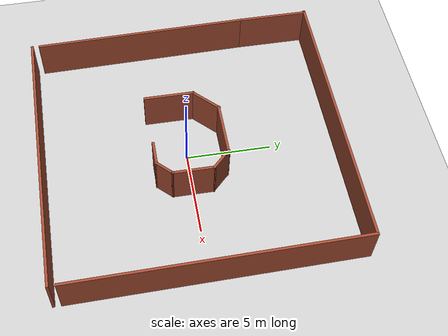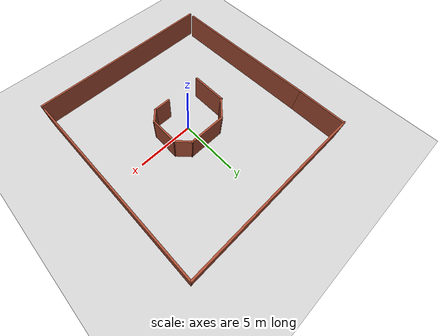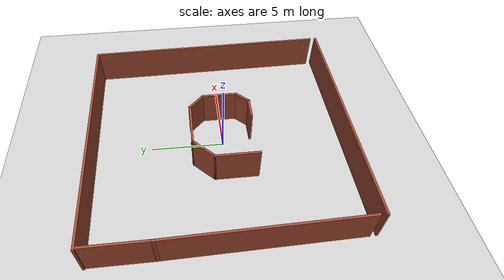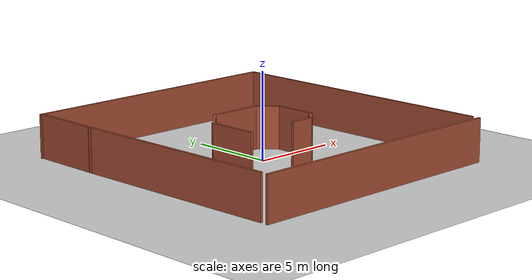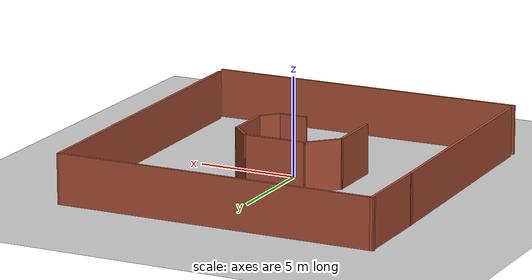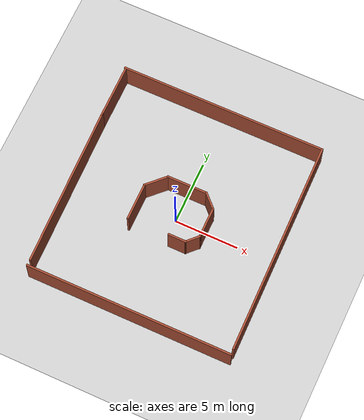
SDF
<sdf version="1.6">
 <world name="default">
  <light name="sun" type="directional">
   <pose>0 0 10 0 -0 0</pose>
   <diffuse>0.8 0.8 0.8 1</diffuse>
   <specular>0.2 0.2 0.2 1</specular>
   <attenuation>
    <range>1000</range>
    <constant>0.9</constant>
    <linear>0.01</linear>
    <quadratic>0.001</quadratic>
   </attenuation>
   <direction>-0.5 0.1 -0.9</direction>
  </light>
  <model name="ground_plane">
   <static>1</static>
   <link name="link">
    <collision name="collision">
     <geometry><plane><normal>0 0 1</normal><size>100 100</size></plane></geometry>
     <surface><friction><ode><mu>100</mu><mu2>50</mu2></ode></friction></surface>
    </collision>
    <visual name="visual">
     <cast_shadows>0</cast_shadows>
     <geometry><plane><normal>0 0 1</normal><size>100 100</size></plane></geometry>
     <material>
      <script><uri>file://media/materials/scripts/gazebo.material</uri><name>Gazebo/Grey</name></script>
     </material>
    </visual>
   </link>
  </model>
  <gravity>0 0 -9.8</gravity>
  <magnetic_field>6e-06 2.3e-05 -4.2e-05</magnetic_field>
  <atmosphere type="adiabatic"/>
  <physics name="default_physics" default="0" type="ode">
   <max_step_size>0.001</max_step_size>
   <real_time_factor>1</real_time_factor>
   <real_time_update_rate>1000</real_time_update_rate>
  </physics>
  <scene><ambient>0.4 0.4 0.4 1</ambient><background>0.7 0.7 0.7 1</background><shadows>1</shadows></scene>
  <audio><device>default</device></audio>
  <spherical_coordinates>
   <surface_model>EARTH_WGS84</surface_model>
   <latitude_deg>0</latitude_deg>
   <longitude_deg>0</longitude_deg>
   <elevation>0</elevation>
   <heading_deg>0</heading_deg>
  </spherical_coordinates>
  <model name="building2">
   <pose>-0.060586 0.241411 0 0 -0 0</pose>
   <link name="Wall_11">
    <collision name="Wall_11_Collision">
     <geometry><box><size>1.5 0.15 2.5</size></box></geometry>
     <pose>0 0 1.25 0 -0 0</pose>
    </collision>
    <visual name="Wall_11_Visual">
     <pose>0 0 1.25 0 -0 0</pose>
     <geometry><box><size>1.5 0.15 2.5</size></box></geometry>
     <material>
      <script><uri>file://media/materials/scripts/gazebo.material</uri><name>Gazebo/Bricks</name></script>
      <ambient>1 1 1 1</ambient>
     </material>
     <meta><layer>0</layer></meta>
    </visual>
    <pose>1.08797 -2.21366 0 0 -0 3.14159</pose>
   </link>
   <link name="Wall_13">
    <collision name="Wall_13_Collision">
     <geometry><box><size>12.7743 0.15 2.5</size></box></geometry>
     <pose>0 0 1.25 0 -0 0</pose>
    </collision>
    <visual name="Wall_13_Visual">
     <pose>0 0 1.25 0 -0 0</pose>
     <geometry><box><size>12.7743 0.15 2.5</size></box></geometry>
     <material>
      <script><uri>file://media/materials/scripts/gazebo.material</uri><name>Gazebo/Bricks</name></script>
      <ambient>1 1 1 1</ambient>
     </material>
     <meta><layer>0</layer></meta>
    </visual>
    <pose>-8.01555 -1.8289 0 0 -0 -1.55174</pose>
   </link>
   <link name="Wall_14">
    <collision name="Wall_14_Collision">
     <geometry><box><size>16.25 0.15 2.5</size></box></geometry>
     <pose>0 0 1.25 0 -0 0</pose>
    </collision>
    <visual name="Wall_14_Visual">
     <pose>0 0 1.25 0 -0 0</pose>
     <geometry><box><size>16.25 0.15 2.5</size></box></geometry>
     <material>
      <script><uri>file://media/materials/scripts/gazebo.material</uri><name>Gazebo/Bricks</name></script>
      <ambient>1 1 1 1</ambient>
     </material>
     <meta><layer>0</layer></meta>
    </visual>
    <pose>0.154745 -8.62113 0 0 -0 0</pose>
   </link>
   <link name="Wall_15">
    <collision name="Wall_15_Collision">
     <geometry><box><size>16.9117 0.15 2.5</size></box></geometry>
     <pose>0 0 1.25 0 -0 0</pose>
    </collision>
    <visual name="Wall_15_Visual">
     <pose>0 0 1.25 0 -0 0</pose>
     <geometry><box><size>16.9117 0.15 2.5</size></box></geometry>
     <material>
      <script><uri>file://media/materials/scripts/gazebo.material</uri><name>Gazebo/Bricks</name></script>
      <ambient>1 1 1 1</ambient>
     </material>
     <meta><layer>0</layer></meta>
    </visual>
    <pose>8.08445 0.240065 0 0 -0 1.58515</pose>
   </link>
   <link name="Wall_16">
    <collision name="Wall_16_Collision">
     <geometry><box><size>16.25 0.15 2.5</size></box></geometry>
     <pose>0 0 1.25 0 -0 0</pose>
    </collision>
    <visual name="Wall_16_Visual">
     <pose>0 0 1.25 0 -0 0</pose>
     <geometry><box><size>16.25 0.15 2.5</size></box></geometry>
     <material>
      <script><uri>file://media/materials/scripts/gazebo.material</uri><name>Gazebo/Bricks</name></script>
      <ambient>1 1 1 1</ambient>
     </material>
     <meta><layer>0</layer></meta>
    </visual>
    <pose>-0.155815 8.62006 0 0 -0 3.14159</pose>
   </link>
   <link name="Wall_17">
    <collision name="Wall_17_Collision">
     <geometry><box><size>4.38851 0.15 2.5</size></box></geometry>
     <pose>0 0 1.25 0 -0 0</pose>
    </collision>
    <visual name="Wall_17_Visual">
     <pose>0 0 1.25 0 -0 0</pose>
     <geometry><box><size>4.38851 0.15 2.5</size></box></geometry>
     <material>
      <script><uri>file://media/materials/scripts/gazebo.material</uri><name>Gazebo/Bricks</name></script>
      <ambient>1 1 1 1</ambient>
     </material>
     <meta><layer>0</layer></meta>
    </visual>
    <pose>-8.13585 6.50109 0 0 -0 -1.5708</pose>
   </link>
   <link name="Wall_3">
    <collision name="Wall_3_Collision">
     <geometry><box><size>1.25702 0.15 2.5</size></box></geometry>
     <pose>0 0 1.25 0 -0 0</pose>
    </collision>
    <visual name="Wall_3_Visual">
     <pose>0 0 1.25 0 -0 0</pose>
     <geometry><box><size>1.25702 0.15 2.5</size></box></geometry>
     <material>
      <script><uri>file://media/materials/scripts/gazebo.material</uri><name>Gazebo/Bricks</name></script>
      <ambient>1 1 1 1</ambient>
     </material>
     <meta><layer>0</layer></meta>
    </visual>
    <pose>2.14769 -1.81571 0 0 -0 0.802294</pose>
   </link>
   <link name="Wall_5">
    <collision name="Wall_5_Collision">
     <geometry><box><size>2.5 0.15 2.5</size></box></geometry>
     <pose>0 0 1.25 0 -0 0</pose>
    </collision>
    <visual name="Wall_5_Visual">
     <pose>0 0 1.25 0 -0 0</pose>
     <geometry><box><size>2.5 0.15 2.5</size></box></geometry>
     <material>
      <script><uri>file://media/materials/scripts/gazebo.material</uri><name>Gazebo/Bricks</name></script>
      <ambient>1 1 1 1</ambient>
     </material>
     <meta><layer>0</layer></meta>
    </visual>
    <pose>2.53241 -0.242763 0 0 -0 1.5708</pose>
   </link>
   <link name="Wall_6">
    <collision name="Wall_6_Collision">
     <geometry><box><size>1.5 0.15 2.5</size></box></geometry>
     <pose>0 0 1.25 0 -0 0</pose>
    </collision>
    <visual name="Wall_6_Visual">
     <pose>0 0 1.25 0 -0 0</pose>
     <geometry><box><size>1.5 0.15 2.5</size></box></geometry>
     <material>
      <script><uri>file://media/materials/scripts/gazebo.material</uri><name>Gazebo/Bricks</name></script>
      <ambient>1 1 1 1</ambient>
     </material>
     <meta><layer>0</layer></meta>
    </visual>
    <pose>2.05512 1.40953 0 0 -0 2.35619</pose>
   </link>
   <link name="Wall_7">
    <collision name="Wall_7_Collision">
     <geometry><box><size>3.25 0.15 2.5</size></box></geometry>
     <pose>0 0 1.25 0 -0 0</pose>
    </collision>
    <visual name="Wall_7_Visual">
     <pose>0 0 1.25 0 -0 0</pose>
     <geometry><box><size>3.25 0.15 2.5</size></box></geometry>
     <material>
      <script><uri>file://media/materials/scripts/gazebo.material</uri><name>Gazebo/Bricks</name></script>
      <ambient>1 1 1 1</ambient>
     </material>
     <meta><layer>0</layer></meta>
    </visual>
    <pose>0.027819 1.88683 0 0 -0 3.14159</pose>
   </link>
   <link name="Wall_8">
    <collision name="Wall_8_Collision">
     <geometry><box><size>2 0.15 2.5</size></box></geometry>
     <pose>0 0 1.25 0 -0 0</pose>
    </collision>
    <visual name="Wall_8_Visual">
     <pose>0 0 1.25 0 -0 0</pose>
     <geometry><box><size>2 0.15 2.5</size></box></geometry>
     <material>
      <script><uri>file://media/materials/scripts/gazebo.material</uri><name>Gazebo/Bricks</name></script>
      <ambient>1 1 1 1</ambient>
     </material>
     <meta><layer>0</layer></meta>
    </visual>
    <pose>-2.17625 1.23276 0 0 -0 -2.35619</pose>
   </link>
   <link name="Wall_9">
    <collision name="Wall_9_Collision">
     <geometry><box><size>3 0.15 2.5</size></box></geometry>
     <pose>0 0 1.25 0 -0 0</pose>
    </collision>
    <visual name="Wall_9_Visual">
     <pose>0 0 1.25 0 -0 0</pose>
     <geometry><box><size>3 0.15 2.5</size></box></geometry>
     <material>
      <script><uri>file://media/materials/scripts/gazebo.material</uri><name>Gazebo/Bricks</name></script>
      <ambient>1 1 1 1</ambient>
     </material>
     <meta><layer>0</layer></meta>
    </visual>
    <pose>-2.83033 -0.846316 0 0 -0 -1.5708</pose>
   </link>
   <static>1</static>
  </model>
 </world>
</sdf>
